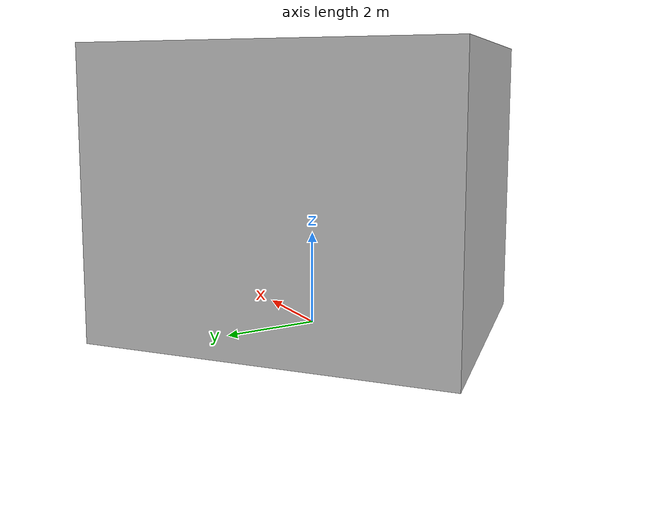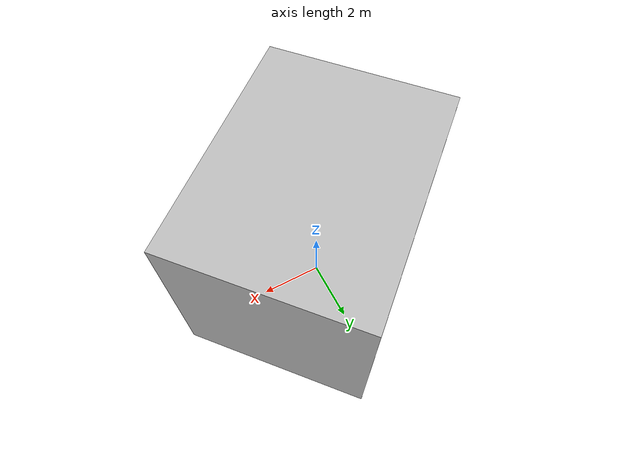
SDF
<?xml version="1.0" ?>
<sdf version="1.7">
  <model name="building_1630_assumed_a_capela">
    <static>true</static>
    <link name="building_link">
      <visual name="building_visual">
        <geometry>
          <mesh>
            <uri>model://building_1630_assumed_a_capela/meshes/construction_1630_assumed_A_Capela_h6m.obj</uri>
          </mesh>
        </geometry>
      </visual>
    <collision name="building_collision">
      <geometry>
        <mesh>
          <uri>model://building_1630_assumed_a_capela/meshes/construction_1630_assumed_A_Capela_h6m.obj</uri>
        </mesh>
      </geometry>
    </collision>
    </link>
  </model>
</sdf>
